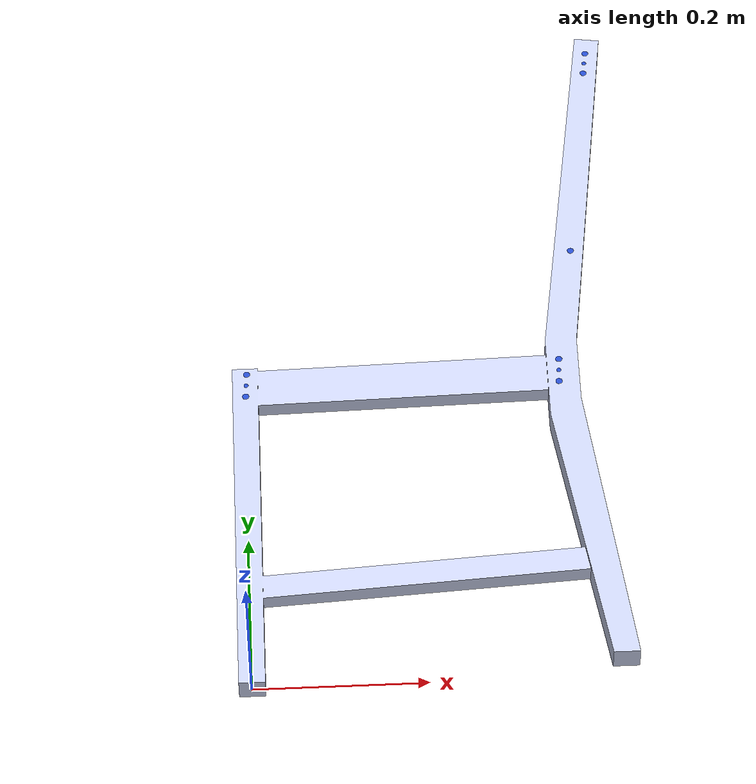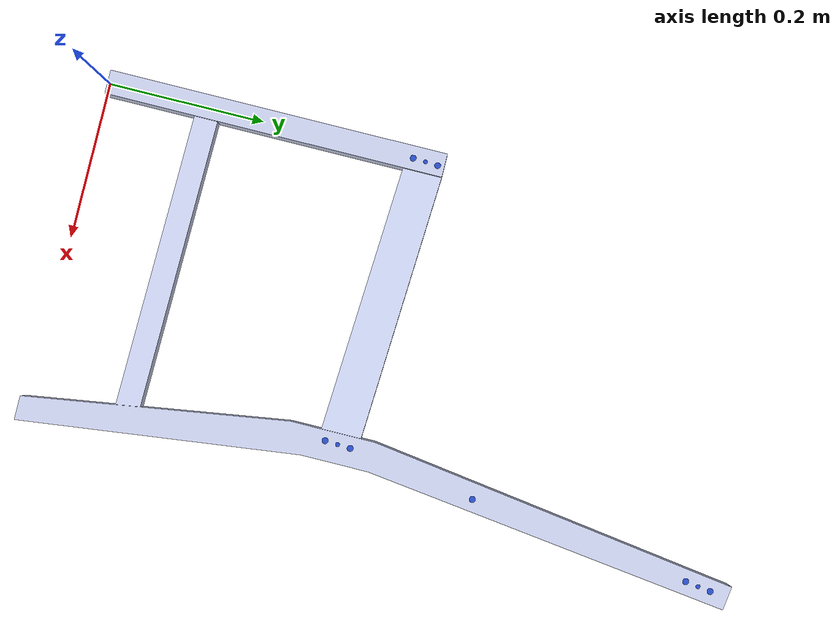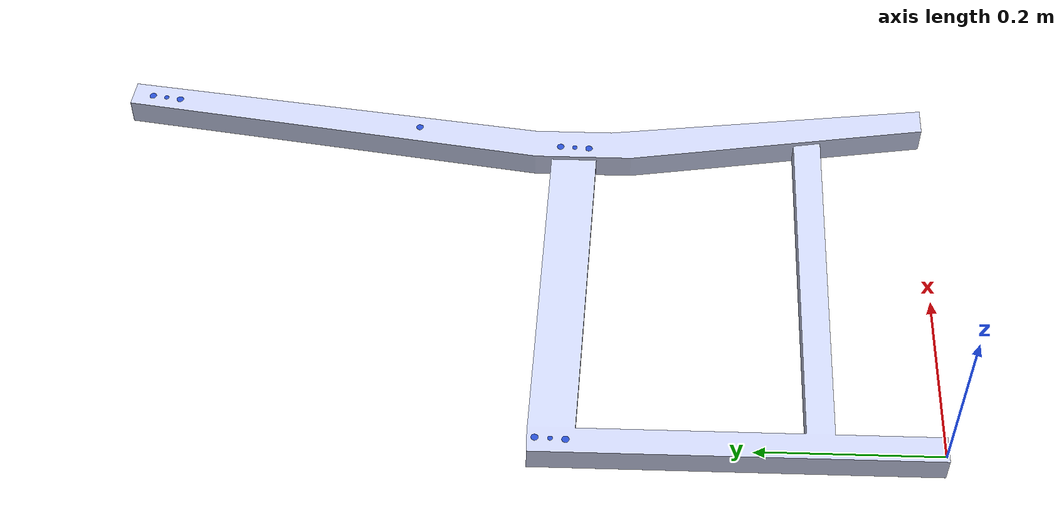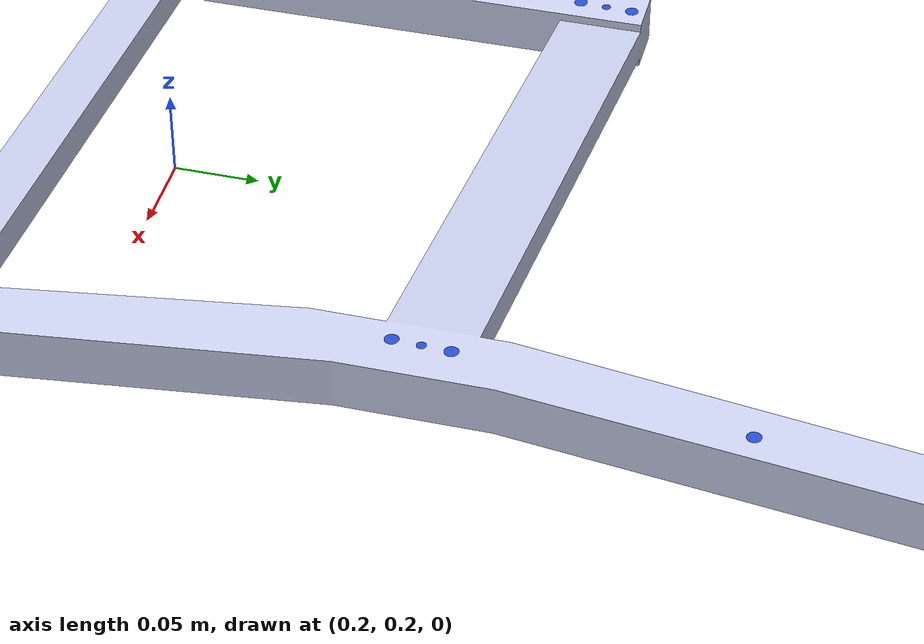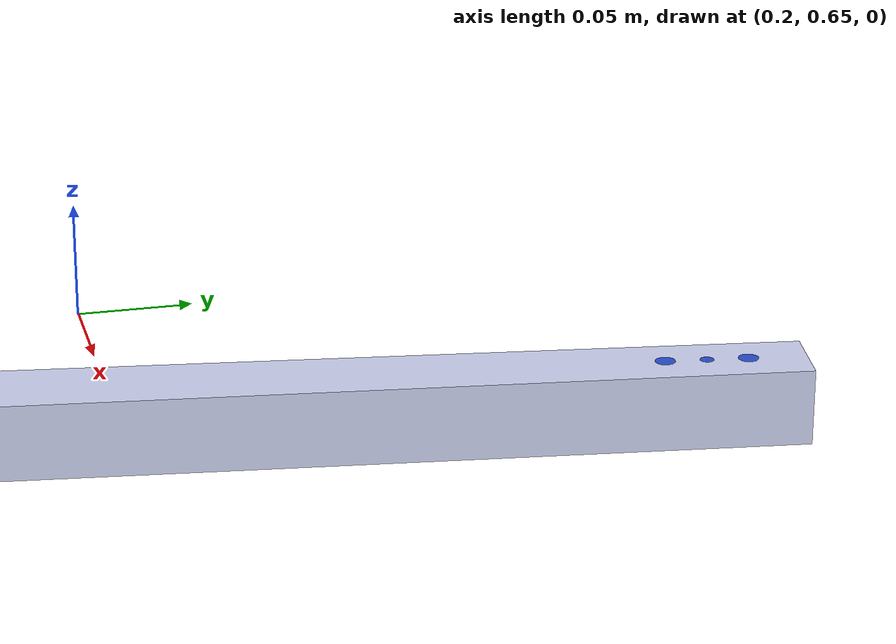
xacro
<?xml version="1.0" encoding="utf-8"?>
<robot name="part5.SLDPRT" xmlns:xacro="http://www.ros.org/wiki/xacro">

	<link name="part5.SLDPRT">
		<inertial>
			<origin xyz="0.25069 0.35098 0.021275" rpy="0 0 0"></origin>
			<mass value="1.8124"></mass>
			<inertia ixx="0.085423" ixy="0.02825" ixz="0.004314" iyy="0.051695" iyz="0.0019941" izz="0.13615"></inertia>
		</inertial>
		<visual>
			<origin xyz="0 0 0" rpy="0 0 0"></origin>
			<geometry>
				<mesh filename="package://object_description/urdfs/part5.SLDPRT/meshes/part5.SLDPRT.STL"></mesh>
			</geometry>
			<material name="">
				<color rgba="0.79216 0.81961 0.93333 1"></color>
			</material>
		</visual>
		<collision>
			<origin xyz="0 0 0" rpy="0 0 0"></origin>
			<geometry>
				<mesh filename="package://object_description/urdfs/part5.SLDPRT/meshes/part5.SLDPRT.STL"></mesh>
			</geometry>
		</collision>
	</link>
	<link name="part5 hole blocked 1">
		<visual>
			<origin xyz="0 0 0" rpy="0 0 0"></origin>
			<geometry>
				<cylinder length="0.01" radius="0.004"></cylinder>
			</geometry>
		</visual>
	</link>
	<link name="part5 hole opened 2">
		<visual>
			<origin xyz="0 0 0" rpy="0 0 0"></origin>
			<geometry>
				<cylinder length="0.03" radius="0.00275"></cylinder>
			</geometry>
		</visual>
	</link>
	<link name="part5 hole blocked 3">
		<visual>
			<origin xyz="0 0 0" rpy="0 0 0"></origin>
			<geometry>
				<cylinder length="0.01" radius="0.004"></cylinder>
			</geometry>
		</visual>
	</link>
	<link name="part5 hole blocked 4">
		<visual>
			<origin xyz="0 0 0" rpy="0 0 0"></origin>
			<geometry>
				<cylinder length="0.01" radius="0.004"></cylinder>
			</geometry>
		</visual>
	</link>
	<link name="part5 hole opened 5">
		<visual>
			<origin xyz="0 0 0" rpy="0 0 0"></origin>
			<geometry>
				<cylinder length="0.03" radius="0.00275"></cylinder>
			</geometry>
		</visual>
	</link>
	<link name="part5 hole blocked 6">
		<visual>
			<origin xyz="0 0 0" rpy="0 0 0"></origin>
			<geometry>
				<cylinder length="0.01" radius="0.004"></cylinder>
			</geometry>
		</visual>
	</link>
	<link name="part5 hole blocked 7">
		<visual>
			<origin xyz="0 0 0" rpy="0 0 0"></origin>
			<geometry>
				<cylinder length="0.015" radius="0.004"></cylinder>
			</geometry>
		</visual>
	</link>
	<link name="part5 hole blocked 8">
		<visual>
			<origin xyz="0 0 0" rpy="0 0 0"></origin>
			<geometry>
				<cylinder length="0.015" radius="0.004"></cylinder>
			</geometry>
		</visual>
	</link>
	<link name="part5 hole opened 9">
		<visual>
			<origin xyz="0 0 0" rpy="0 0 0"></origin>
			<geometry>
				<cylinder length="0.03" radius="0.00275"></cylinder>
			</geometry>
		</visual>
	</link>
	<link name="part5 hole blocked 10">
		<visual>
			<origin xyz="0 0 0" rpy="0 0 0"></origin>
			<geometry>
				<cylinder length="0.015" radius="0.004"></cylinder>
			</geometry>
		</visual>
	</link>
	<joint name="part5 hole blocked 1 joint" type="fixed">
		<origin xyz="0.00049 0.3947 0.01" rpy="0.0 3.14159265359 0.0"></origin>
		<parent link="part5.SLDPRT"></parent>
		<child link="part5 hole blocked 1"></child>
	</joint>
	<joint name="part5 hole opened 2 joint" type="fixed">
		<origin xyz="0.00133 0.41068 0.0" rpy="0.0 0.0 0.0"></origin>
		<parent link="part5.SLDPRT"></parent>
		<child link="part5 hole opened 2"></child>
	</joint>
	<joint name="part5 hole blocked 3 joint" type="fixed">
		<origin xyz="0.00217 0.42666 0.01" rpy="0.0 3.14159265359 0.0"></origin>
		<parent link="part5.SLDPRT"></parent>
		<child link="part5 hole blocked 3"></child>
	</joint>
	<joint name="part5 hole blocked 4 joint" type="fixed">
		<origin xyz="0.36737 0.37548 0.045" rpy="0.0 3.14159265359 0.0"></origin>
		<parent link="part5.SLDPRT"></parent>
		<child link="part5 hole blocked 4"></child>
	</joint>
	<joint name="part5 hole opened 5 joint" type="fixed">
		<origin xyz="0.36821 0.39146 0.035" rpy="0.0 0.0 0.0"></origin>
		<parent link="part5.SLDPRT"></parent>
		<child link="part5 hole opened 5"></child>
	</joint>
	<joint name="part5 hole blocked 6 joint" type="fixed">
		<origin xyz="0.36904 0.40743 0.045" rpy="0.0 3.14159265359 0.0"></origin>
		<parent link="part5.SLDPRT"></parent>
		<child link="part5 hole blocked 6"></child>
	</joint>
	<joint name="part5 hole blocked 7 joint" type="fixed">
		<origin xyz="0.39324 0.56739 0.0425" rpy="0.0 3.14159265359 0.0"></origin>
		<parent link="part5.SLDPRT"></parent>
		<child link="part5 hole blocked 7"></child>
	</joint>
	<joint name="part5 hole blocked 8 joint" type="fixed">
		<origin xyz="0.42712 0.84437 0.0425" rpy="0.0 3.14159265359 0.0"></origin>
		<parent link="part5.SLDPRT"></parent>
		<child link="part5 hole blocked 8"></child>
	</joint>
	<joint name="part5 hole opened 9 joint" type="fixed">
		<origin xyz="0.42935 0.86022 0.035" rpy="0.0 0.0 0.0"></origin>
		<parent link="part5.SLDPRT"></parent>
		<child link="part5 hole opened 9"></child>
	</joint>
	<joint name="part5 hole blocked 10 joint" type="fixed">
		<origin xyz="0.43158 0.87606 0.0425" rpy="0.0 3.14159265359 0.0"></origin>
		<parent link="part5.SLDPRT"></parent>
		<child link="part5 hole blocked 10"></child>
	</joint>
	<gazebo reference="part5 hole blocked 1">
		<material>Gazebo/BlueTransparent</material>
	</gazebo>
	<gazebo reference="part5 hole opened 2">
		<material>Gazebo/BlueTransparent</material>
	</gazebo>
	<gazebo reference="part5 hole blocked 3">
		<material>Gazebo/BlueTransparent</material>
	</gazebo>
	<gazebo reference="part5 hole blocked 4">
		<material>Gazebo/BlueTransparent</material>
	</gazebo>
	<gazebo reference="part5 hole opened 5">
		<material>Gazebo/BlueTransparent</material>
	</gazebo>
	<gazebo reference="part5 hole blocked 6">
		<material>Gazebo/BlueTransparent</material>
	</gazebo>
	<gazebo reference="part5 hole blocked 7">
		<material>Gazebo/BlueTransparent</material>
	</gazebo>
	<gazebo reference="part5 hole blocked 8">
		<material>Gazebo/BlueTransparent</material>
	</gazebo>
	<gazebo reference="part5 hole opened 9">
		<material>Gazebo/BlueTransparent</material>
	</gazebo>
	<gazebo reference="part5 hole blocked 10">
		<material>Gazebo/BlueTransparent</material>
	</gazebo>
</robot>
